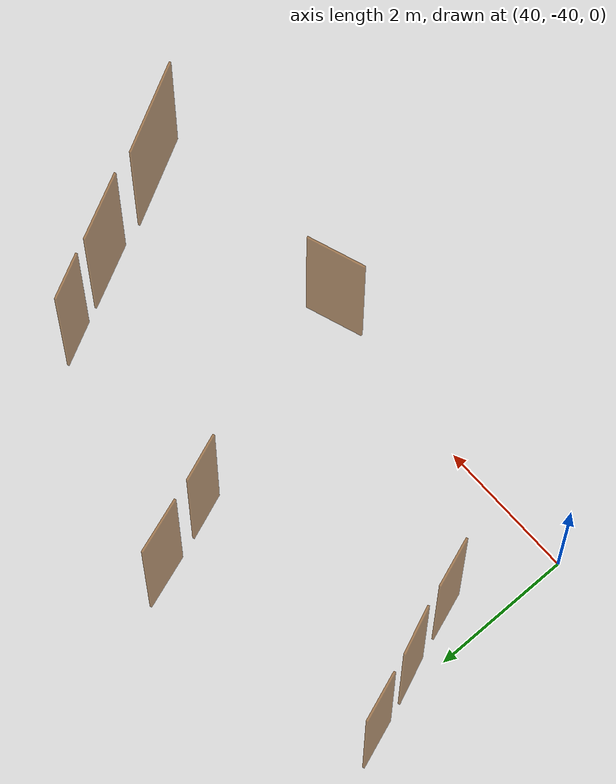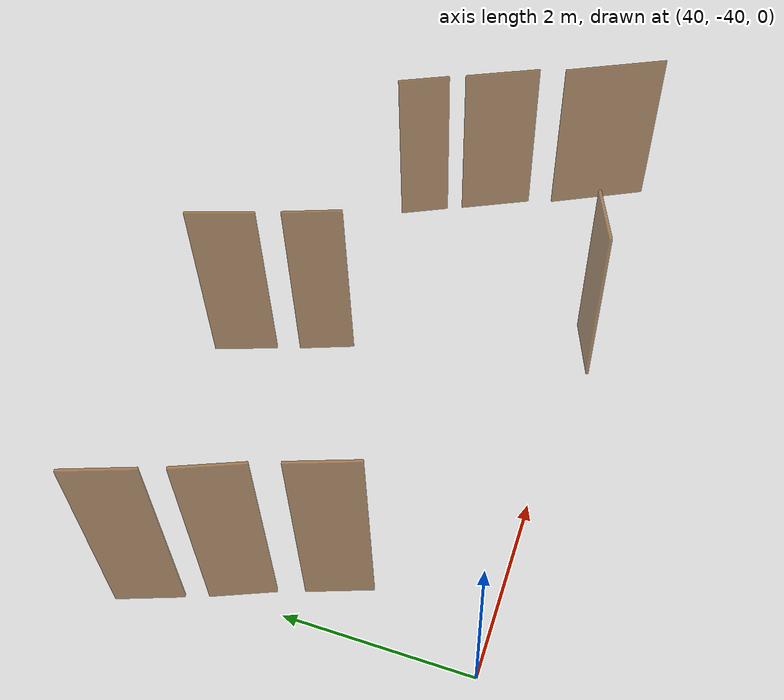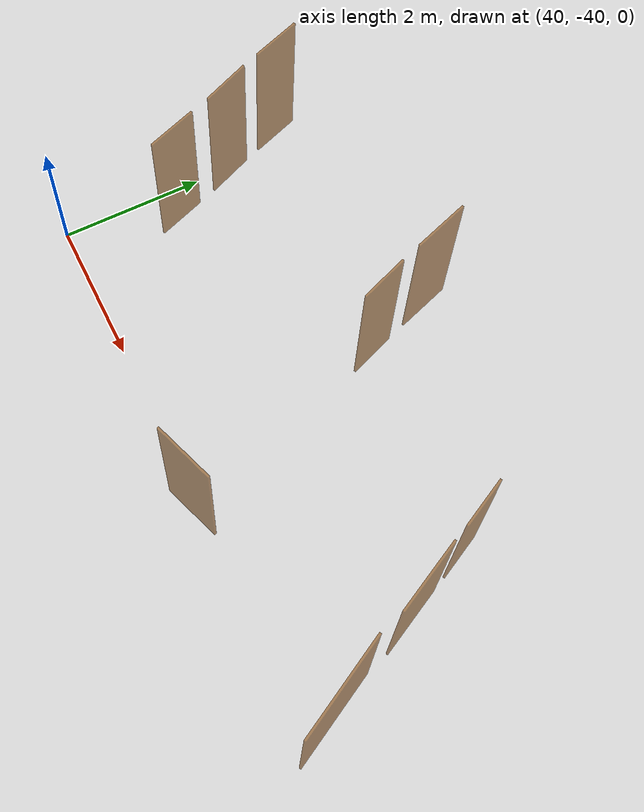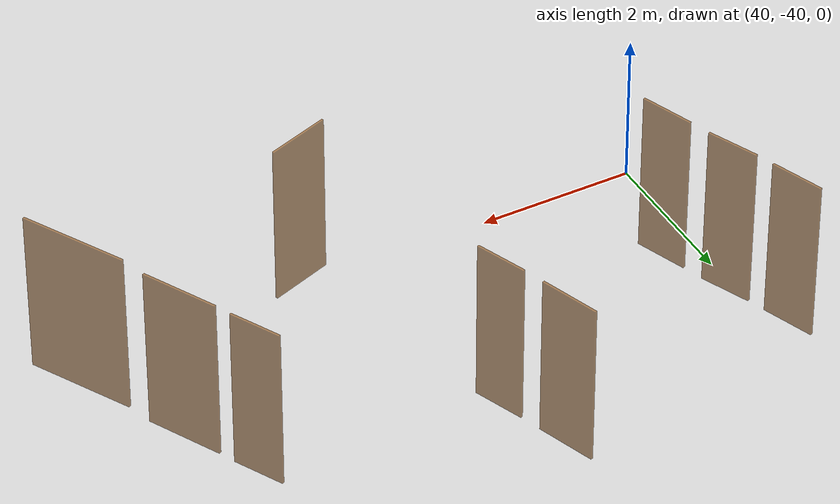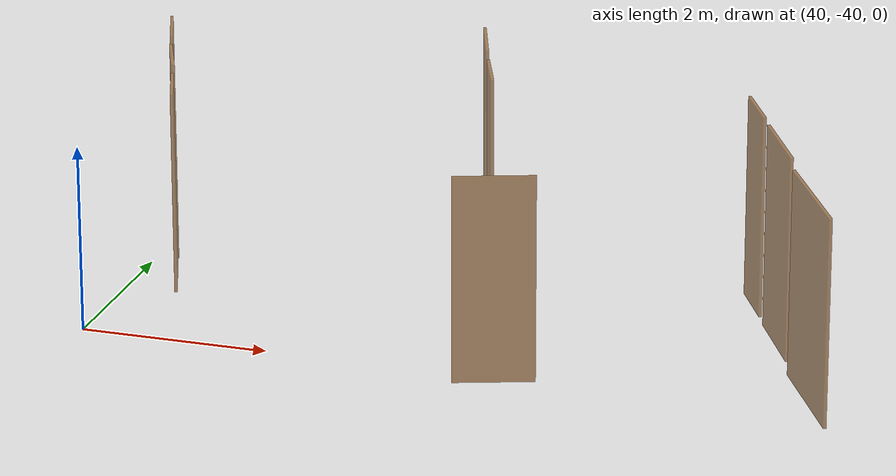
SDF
<sdf version="1.7">
 <world name="world">
  <include><uri>model://sun</uri></include>
  <model name="D1">
   <pose>46.92098903169145 -38.269014869920476 0.0 0 0 -1.0989798712124257</pose>
   <link name="right">
    <pose>0 0 1.11 0 0 0</pose>
    <visual name="right_visual">
     <geometry><box><size>0.9994952973221634 0.03 2.2</size></box></geometry>
     <material><ambient>0.5 0.25 0 0.6</ambient><diffuse>0.5 0.25 0 0.6</diffuse></material>
    </visual>
    <collision name="right_collision">
     <geometry><box><size>0.9994952973221634 0.03 2.2</size></box></geometry>
     <surface><contact><collide_bitmask>0x02</collide_bitmask></contact></surface>
    </collision>
    <inertial>
     <mass>50.0</mass>
     <inertia><ixx>20.17041666666667</ixx><iyy>24.329128539038006</iyy><izz>4.166211872371333</izz></inertia>
    </inertial>
   </link>
   <joint name="right_joint" type="revolute">
    <parent>world</parent>
    <child>right</child>
    <axis><xyz>0 0 1</xyz><limit><lower>0</lower><upper>1.57</upper></limit></axis>
    <pose>0.5047476486610817 0 0 0 0 0</pose>
   </joint>
   <plugin name="door_D1" filename="libdoor.so">
    <v_max_door>0.5</v_max_door>
    <a_max_door>0.3</a_max_door>
    <a_nom_door>0.15</a_nom_door>
    <dx_min_door>0.01</dx_min_door>
    <f_max_door>500.0</f_max_door>
    <door name="D1" type="SwingDoor" left_joint_name="empty_joint" right_joint_name="right_joint"/>
   </plugin>
  </model>
  <model name="D3">
   <pose>44.45780143954799 -40.09541944021848 0.0 0 0 -2.8085231029714666</pose>
   <link name="right">
    <pose>0 0 1.11 0 0 0</pose>
    <visual name="right_visual">
     <geometry><box><size>0.8422487052230405 0.03 2.2</size></box></geometry>
     <material><ambient>0.5 0.25 0 0.6</ambient><diffuse>0.5 0.25 0 0.6</diffuse></material>
    </visual>
    <collision name="right_collision">
     <geometry><box><size>0.8422487052230405 0.03 2.2</size></box></geometry>
     <surface><contact><collide_bitmask>0x02</collide_bitmask></contact></surface>
    </collision>
    <inertial>
     <mass>50.0</mass>
     <inertia><ixx>20.17041666666667</ixx><iyy>23.122428672707873</iyy><izz>2.959512006041201</izz></inertia>
    </inertial>
   </link>
   <joint name="right_joint" type="revolute">
    <parent>world</parent>
    <child>right</child>
    <axis><xyz>0 0 1</xyz><limit><lower>0</lower><upper>1.57</upper></limit></axis>
    <pose>0.42612435261152026 0 0 0 0 0</pose>
   </joint>
   <plugin name="door_D3" filename="libdoor.so">
    <v_max_door>0.5</v_max_door>
    <a_max_door>0.3</a_max_door>
    <a_nom_door>0.15</a_nom_door>
    <dx_min_door>0.01</dx_min_door>
    <f_max_door>500.0</f_max_door>
    <door name="D3" type="SwingDoor" left_joint_name="empty_joint" right_joint_name="right_joint"/>
   </plugin>
  </model>
  <model name="D4">
   <pose>46.452834850111266 -37.32451124756395 0.0 0 0 -1.096903326789822</pose>
   <link name="right">
    <pose>0 0 1.11 0 0 0</pose>
    <visual name="right_visual">
     <geometry><box><size>0.6756513604164147 0.03 2.2</size></box></geometry>
     <material><ambient>0.5 0.25 0 0.6</ambient><diffuse>0.5 0.25 0 0.6</diffuse></material>
    </visual>
    <collision name="right_collision">
     <geometry><box><size>0.6756513604164147 0.03 2.2</size></box></geometry>
     <surface><contact><collide_bitmask>0x02</collide_bitmask></contact></surface>
    </collision>
    <inertial>
     <mass>50.0</mass>
     <inertia><ixx>20.17041666666667</ixx><iyy>22.068769836802307</iyy><izz>1.9058531701356332</izz></inertia>
    </inertial>
   </link>
   <joint name="right_joint" type="revolute">
    <parent>world</parent>
    <child>right</child>
    <axis><xyz>0 0 1</xyz><limit><lower>0</lower><upper>1.57</upper></limit></axis>
    <pose>0.34282568020820736 0 0 0 0 0</pose>
   </joint>
   <plugin name="door_D4" filename="libdoor.so">
    <v_max_door>0.5</v_max_door>
    <a_max_door>0.3</a_max_door>
    <a_nom_door>0.15</a_nom_door>
    <dx_min_door>0.01</dx_min_door>
    <f_max_door>500.0</f_max_door>
    <door name="D4" type="SwingDoor" left_joint_name="empty_joint" right_joint_name="right_joint"/>
   </plugin>
  </model>
  <model name="D10">
   <pose>47.57296742996311 -39.65833894975704 0.0 0 0 -1.079641047657816</pose>
   <link name="right">
    <pose>0 0 1.11 0 0 0</pose>
    <visual name="right_visual">
     <geometry><box><size>1.3928633332641263 0.03 2.2</size></box></geometry>
     <material><ambient>0.5 0.25 0 0.6</ambient><diffuse>0.5 0.25 0 0.6</diffuse></material>
    </visual>
    <collision name="right_collision">
     <geometry><box><size>1.3928633332641263 0.03 2.2</size></box></geometry>
     <surface><contact><collide_bitmask>0x02</collide_bitmask></contact></surface>
    </collision>
    <inertial>
     <mass>50.0</mass>
     <inertia><ixx>20.17041666666667</ixx><iyy>28.250284438131892</iyy><izz>8.08736777146522</izz></inertia>
    </inertial>
   </link>
   <joint name="right_joint" type="revolute">
    <parent>world</parent>
    <child>right</child>
    <axis><xyz>0 0 1</xyz><limit><lower>0</lower><upper>1.57</upper></limit></axis>
    <pose>0.7014316666320631 0 0 0 0 0</pose>
   </joint>
   <plugin name="door_D10" filename="libdoor.so">
    <v_max_door>0.5</v_max_door>
    <a_max_door>0.3</a_max_door>
    <a_nom_door>0.15</a_nom_door>
    <dx_min_door>0.01</dx_min_door>
    <f_max_door>500.0</f_max_door>
    <door name="D10" type="SwingDoor" left_joint_name="empty_joint" right_joint_name="right_joint"/>
   </plugin>
  </model>
  <model name="D20">
   <pose>40.43922194580149 -38.43462739950938 0.0 0 0 -1.225222611764381</pose>
   <link name="right">
    <pose>0 0 1.11 0 0 0</pose>
    <visual name="right_visual">
     <geometry><box><size>0.6986711318985143 0.03 2.2</size></box></geometry>
     <material><ambient>0.5 0.25 0 0.6</ambient><diffuse>0.5 0.25 0 0.6</diffuse></material>
    </visual>
    <collision name="right_collision">
     <geometry><box><size>0.6986711318985143 0.03 2.2</size></box></geometry>
     <surface><contact><collide_bitmask>0x02</collide_bitmask></contact></surface>
    </collision>
    <inertial>
     <mass>50.0</mass>
     <inertia><ixx>20.17041666666667</ixx><iyy>22.200588960618134</iyy><izz>2.0376722939514633</izz></inertia>
    </inertial>
   </link>
   <joint name="right_joint" type="revolute">
    <parent>world</parent>
    <child>right</child>
    <axis><xyz>0 0 1</xyz><limit><lower>0</lower><upper>1.57</upper></limit></axis>
    <pose>0.35433556594925714 0 0 0 0 0</pose>
   </joint>
   <plugin name="door_D20" filename="libdoor.so">
    <v_max_door>0.5</v_max_door>
    <a_max_door>0.3</a_max_door>
    <a_nom_door>0.15</a_nom_door>
    <dx_min_door>0.01</dx_min_door>
    <f_max_door>500.0</f_max_door>
    <door name="D20" type="SwingDoor" left_joint_name="empty_joint" right_joint_name="right_joint"/>
   </plugin>
  </model>
  <model name="D21">
   <pose>40.099687804383144 -37.52444142503674 0.0 0 0 -1.173716881569916</pose>
   <link name="right">
    <pose>0 0 1.11 0 0 0</pose>
    <visual name="right_visual">
     <geometry><box><size>0.6825449934010345 0.03 2.2</size></box></geometry>
     <material><ambient>0.5 0.25 0 0.6</ambient><diffuse>0.5 0.25 0 0.6</diffuse></material>
    </visual>
    <collision name="right_collision">
     <geometry><box><size>0.6825449934010345 0.03 2.2</size></box></geometry>
     <surface><contact><collide_bitmask>0x02</collide_bitmask></contact></surface>
    </collision>
    <inertial>
     <mass>50.0</mass>
     <inertia><ixx>20.17041666666667</ixx><iyy>22.10778195007008</iyy><izz>1.9448652834034093</izz></inertia>
    </inertial>
   </link>
   <joint name="right_joint" type="revolute">
    <parent>world</parent>
    <child>right</child>
    <axis><xyz>0 0 1</xyz><limit><lower>0</lower><upper>1.57</upper></limit></axis>
    <pose>0.34627249670051724 0 0 0 0 0</pose>
   </joint>
   <plugin name="door_D21" filename="libdoor.so">
    <v_max_door>0.5</v_max_door>
    <a_max_door>0.3</a_max_door>
    <a_nom_door>0.15</a_nom_door>
    <dx_min_door>0.01</dx_min_door>
    <f_max_door>500.0</f_max_door>
    <door name="D21" type="SwingDoor" left_joint_name="empty_joint" right_joint_name="right_joint"/>
   </plugin>
  </model>
  <model name="D22">
   <pose>39.76795054150557 -36.65284146261264 0.0 0 0 -1.2232855965163554</pose>
   <link name="right">
    <pose>0 0 1.11 0 0 0</pose>
    <visual name="right_visual">
     <geometry><box><size>0.6998933678384069 0.03 2.2</size></box></geometry>
     <material><ambient>0.5 0.25 0 0.6</ambient><diffuse>0.5 0.25 0 0.6</diffuse></material>
    </visual>
    <collision name="right_collision">
     <geometry><box><size>0.6998933678384069 0.03 2.2</size></box></geometry>
     <surface><contact><collide_bitmask>0x02</collide_bitmask></contact></surface>
    </collision>
    <inertial>
     <mass>50.0</mass>
     <inertia><ixx>20.17041666666667</ixx><iyy>22.207711359767455</iyy><izz>2.0447946931007817</izz></inertia>
    </inertial>
   </link>
   <joint name="right_joint" type="revolute">
    <parent>world</parent>
    <child>right</child>
    <axis><xyz>0 0 1</xyz><limit><lower>0</lower><upper>1.57</upper></limit></axis>
    <pose>0.3549466839192035 0 0 0 0 0</pose>
   </joint>
   <plugin name="door_D22" filename="libdoor.so">
    <v_max_door>0.5</v_max_door>
    <a_max_door>0.3</a_max_door>
    <a_nom_door>0.15</a_nom_door>
    <dx_min_door>0.01</dx_min_door>
    <f_max_door>500.0</f_max_door>
    <door name="D22" type="SwingDoor" left_joint_name="empty_joint" right_joint_name="right_joint"/>
   </plugin>
  </model>
  <model name="D23">
   <pose>43.486549401759575 -37.0138881594209 0.0 0 0 -1.2084228363325602</pose>
   <link name="right">
    <pose>0 0 1.11 0 0 0</pose>
    <visual name="right_visual">
     <geometry><box><size>0.6777649873222565 0.03 2.2</size></box></geometry>
     <material><ambient>0.5 0.25 0 0.6</ambient><diffuse>0.5 0.25 0 0.6</diffuse></material>
    </visual>
    <collision name="right_collision">
     <geometry><box><size>0.6777649873222565 0.03 2.2</size></box></geometry>
     <surface><contact><collide_bitmask>0x02</collide_bitmask></contact></surface>
    </collision>
    <inertial>
     <mass>50.0</mass>
     <inertia><ixx>20.17041666666667</ixx><iyy>22.08068907516642</iyy><izz>1.917772408499744</izz></inertia>
    </inertial>
   </link>
   <joint name="right_joint" type="revolute">
    <parent>world</parent>
    <child>right</child>
    <axis><xyz>0 0 1</xyz><limit><lower>0</lower><upper>1.57</upper></limit></axis>
    <pose>0.3438824936611283 0 0 0 0 0</pose>
   </joint>
   <plugin name="door_D23" filename="libdoor.so">
    <v_max_door>0.5</v_max_door>
    <a_max_door>0.3</a_max_door>
    <a_nom_door>0.15</a_nom_door>
    <dx_min_door>0.01</dx_min_door>
    <f_max_door>500.0</f_max_door>
    <door name="D23" type="SwingDoor" left_joint_name="empty_joint" right_joint_name="right_joint"/>
   </plugin>
  </model>
  <model name="D24">
   <pose>43.149007163618066 -36.05532739108209 0.0 0 0 -1.2416042181407194</pose>
   <link name="right">
    <pose>0 0 1.11 0 0 0</pose>
    <visual name="right_visual">
     <geometry><box><size>0.7832578912584792 0.03 2.2</size></box></geometry>
     <material><ambient>0.5 0.25 0 0.6</ambient><diffuse>0.5 0.25 0 0.6</diffuse></material>
    </visual>
    <collision name="right_collision">
     <geometry><box><size>0.7832578912584792 0.03 2.2</size></box></geometry>
     <surface><contact><collide_bitmask>0x02</collide_bitmask></contact></surface>
    </collision>
    <inertial>
     <mass>50.0</mass>
     <inertia><ixx>20.17041666666667</ixx><iyy>22.722887184244502</iyy><izz>2.559970517577832</izz></inertia>
    </inertial>
   </link>
   <joint name="right_joint" type="revolute">
    <parent>world</parent>
    <child>right</child>
    <axis><xyz>0 0 1</xyz><limit><lower>0</lower><upper>1.57</upper></limit></axis>
    <pose>0.3966289456292396 0 0 0 0 0</pose>
   </joint>
   <plugin name="door_D24" filename="libdoor.so">
    <v_max_door>0.5</v_max_door>
    <a_max_door>0.3</a_max_door>
    <a_nom_door>0.15</a_nom_door>
    <dx_min_door>0.01</dx_min_door>
    <f_max_door>500.0</f_max_door>
    <door name="D24" type="SwingDoor" left_joint_name="empty_joint" right_joint_name="right_joint"/>
   </plugin>
  </model>
 </world>
</sdf>
